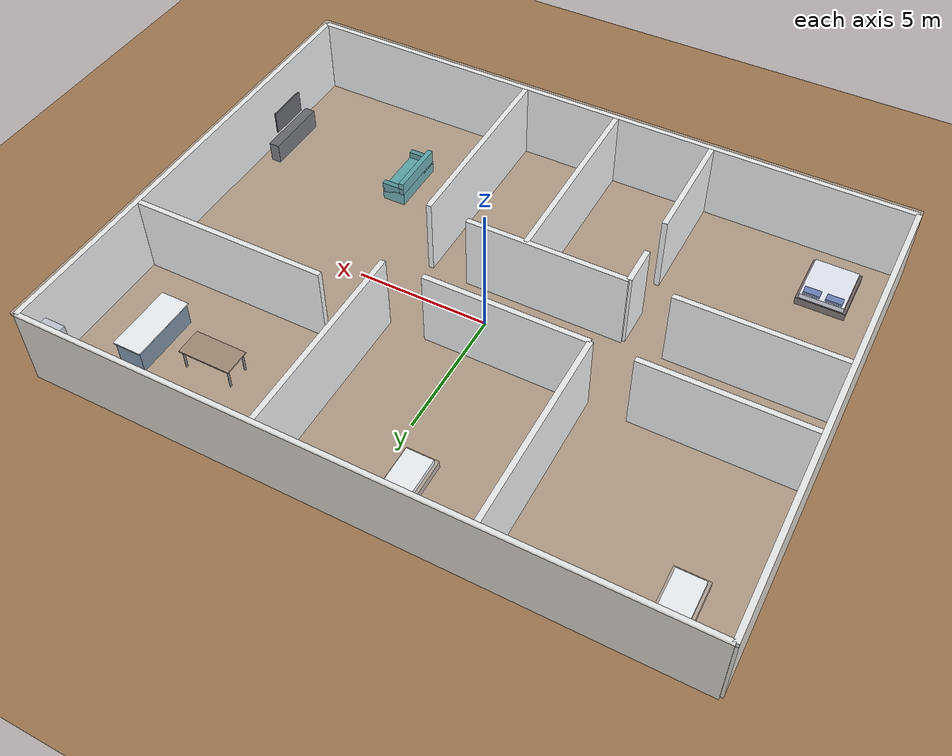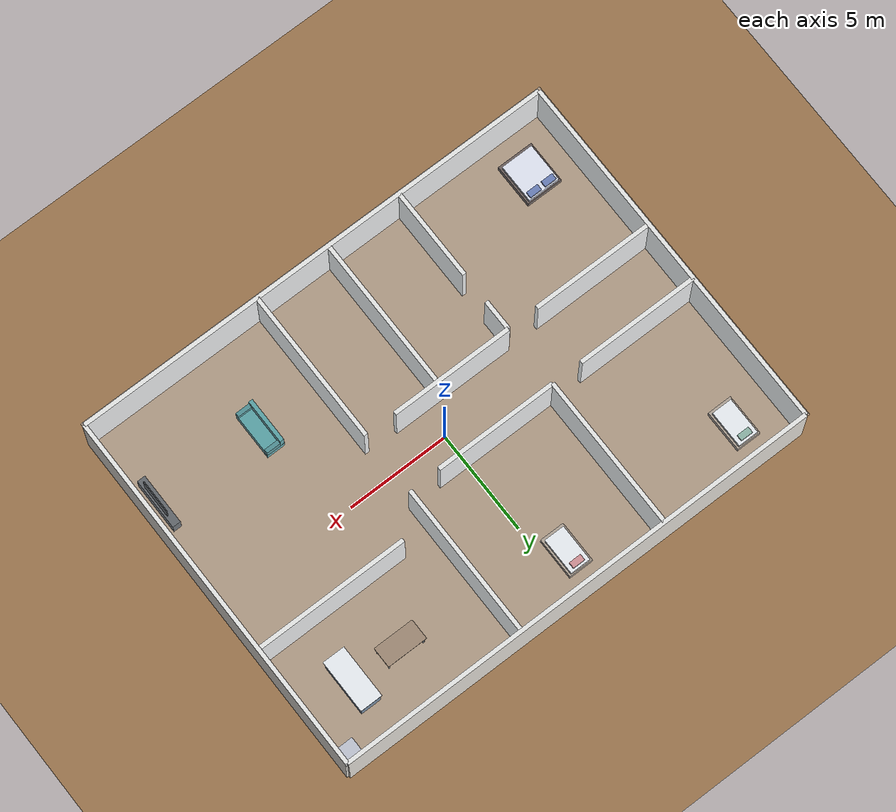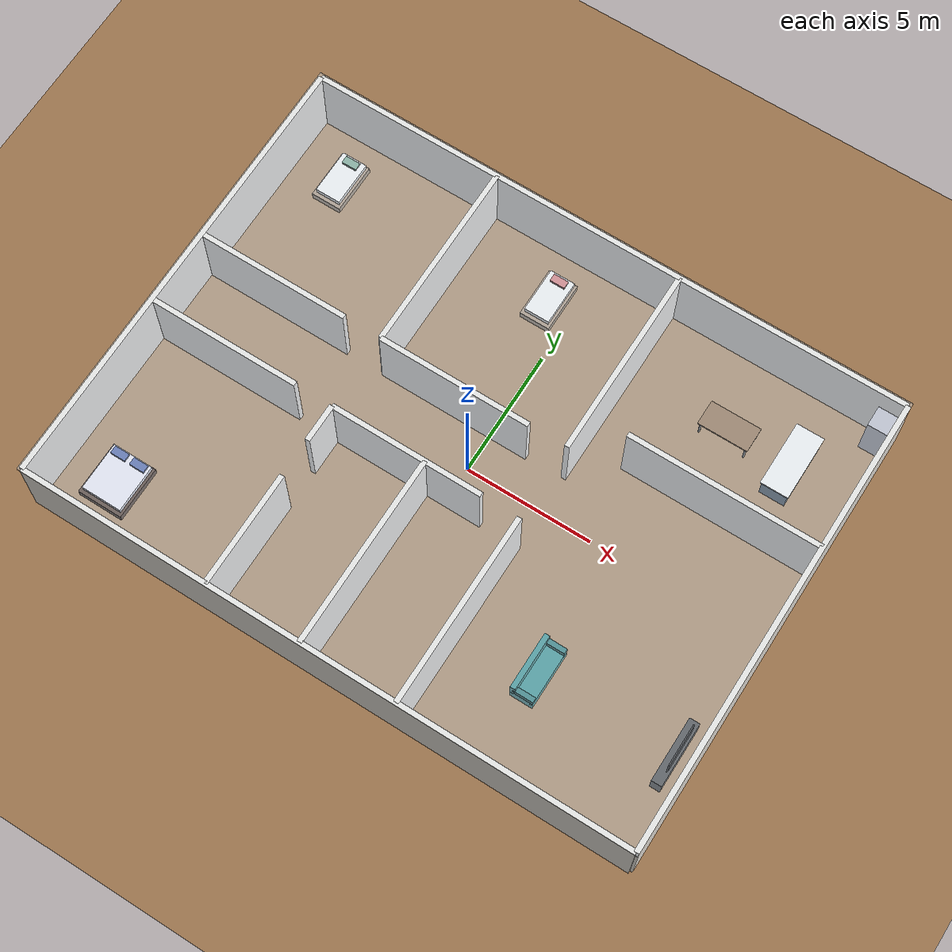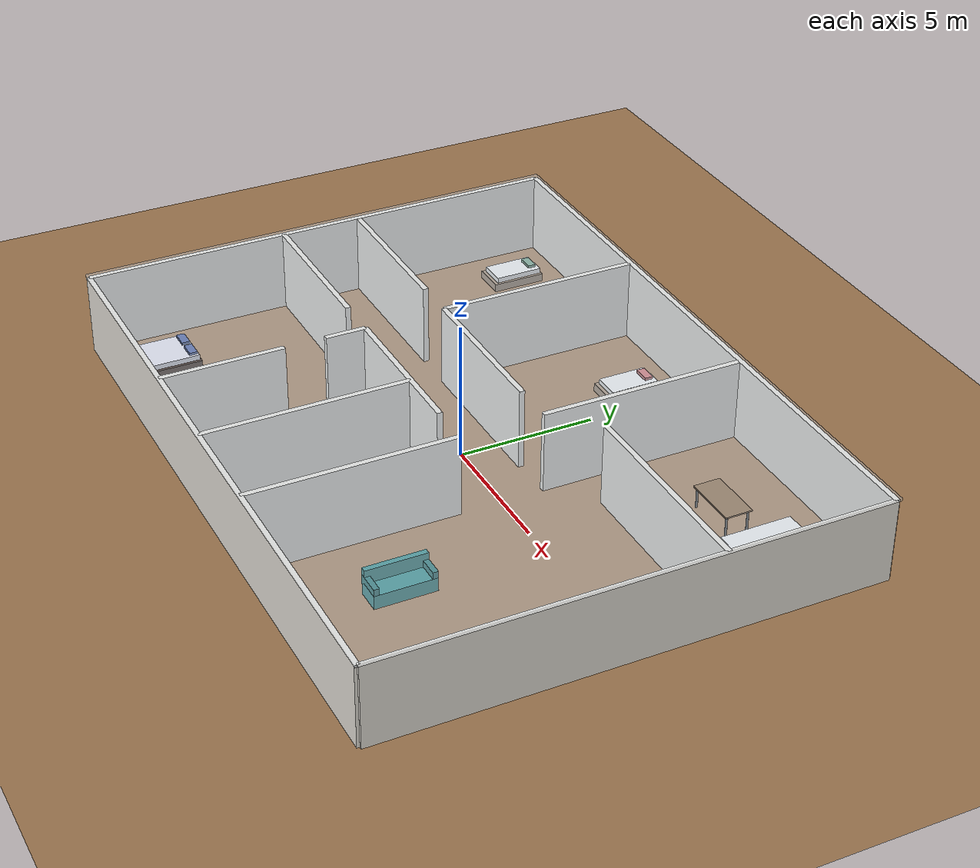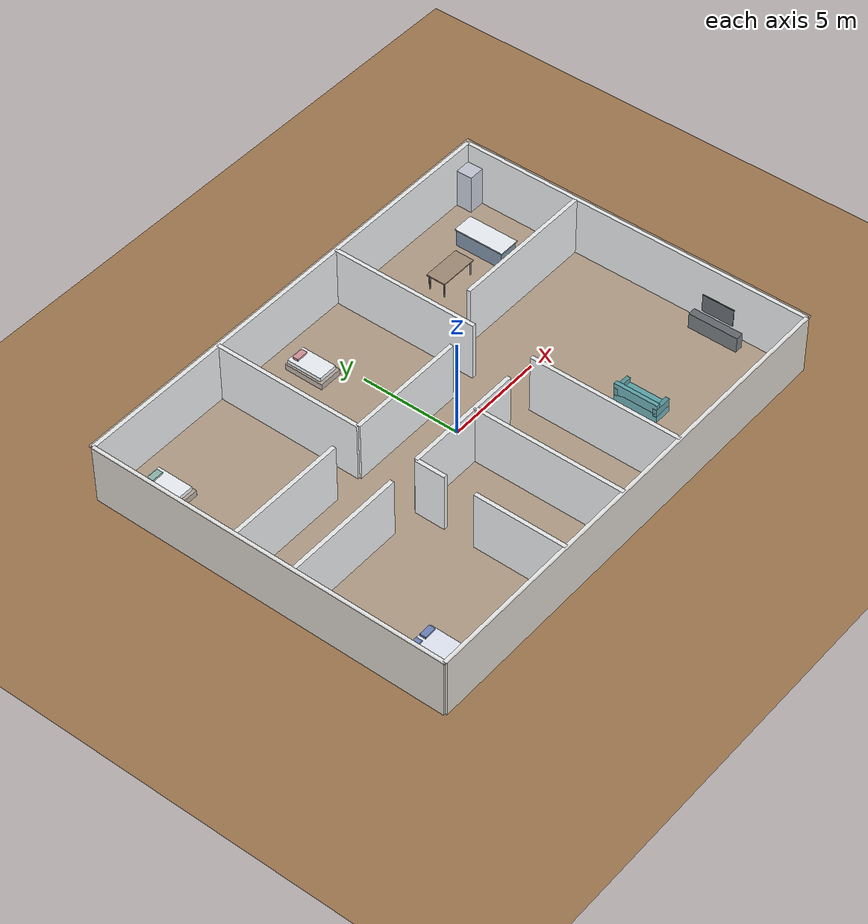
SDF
<sdf version="1.9">
 <world name="slam_world">
  <physics name="1ms" type="ignore">
   <max_step_size>0.001</max_step_size>
   <real_time_factor>1.0</real_time_factor>
  </physics>
  <plugin filename="gz-sim-physics-system" name="gz::sim::systems::Physics"/>
  <plugin filename="gz-sim-sensors-system" name="gz::sim::systems::Sensors">
   <render_engine>ogre2</render_engine>
  </plugin>
  <plugin filename="gz-sim-user-commands-system" name="gz::sim::systems::UserCommands"/>
  <plugin filename="gz-sim-scene-broadcaster-system" name="gz::sim::systems::SceneBroadcaster"/>
  <plugin filename="gz-sim-imu-system" name="gz::sim::systems::Imu"/>
  <plugin filename="gz-sim-navsat-system" name="gz::sim::systems::NavSat"/>
  <scene><ambient>1.0 1.0 1.0</ambient><background>0.6 0.8 0.9</background></scene>
  <light type="directional" name="sun">
   <pose>0 0 15 0 0 0</pose>
   <diffuse>0.95 0.95 0.95 1</diffuse>
   <specular>0.5 0.5 0.5 1</specular>
   <direction>-0.5 0.2 -0.8</direction>
  </light>
  <model name="ground_plane">
   <static>true</static>
   <link name="link">
    <collision name="collision">
     <geometry><plane><normal>0 0 1</normal><size>100 100</size></plane></geometry>
    </collision>
    <visual name="visual">
     <geometry><plane><normal>0 0 1</normal><size>100 100</size></plane></geometry>
     <material>
      <ambient>0.6 0.45 0.3 1</ambient>
      <diffuse>0.6 0.45 0.3 1</diffuse>
      <specular>0.1 0.1 0.1 1</specular>
     </material>
    </visual>
   </link>
  </model>
  <model name="apartment_structure">
   <static>true</static>
   <link name="wall_north">
    <pose>0 9 1.5 0 0 0</pose>
    <collision name="c"><geometry><box><size>24 0.2 3.0</size></box></geometry></collision>
    <visual name="v">
     <geometry><box><size>24 0.2 3.0</size></box></geometry>
     <material><ambient>0.93 0.91 0.88 1</ambient><diffuse>0.93 0.91 0.88 1</diffuse></material>
    </visual>
   </link>
   <link name="wall_south">
    <pose>0 -9 1.5 0 0 0</pose>
    <collision name="c"><geometry><box><size>24 0.2 3.0</size></box></geometry></collision>
    <visual name="v">
     <geometry><box><size>24 0.2 3.0</size></box></geometry>
     <material><ambient>0.93 0.91 0.88 1</ambient><diffuse>0.93 0.91 0.88 1</diffuse></material>
    </visual>
   </link>
   <link name="wall_east">
    <pose>12 0 1.5 0 0 0</pose>
    <collision name="c"><geometry><box><size>0.2 18 3.0</size></box></geometry></collision>
    <visual name="v">
     <geometry><box><size>0.2 18 3.0</size></box></geometry>
     <material><ambient>0.93 0.91 0.88 1</ambient><diffuse>0.93 0.91 0.88 1</diffuse></material>
    </visual>
   </link>
   <link name="wall_west">
    <pose>-12 0 1.5 0 0 0</pose>
    <collision name="c"><geometry><box><size>0.2 18 3.0</size></box></geometry></collision>
    <visual name="v">
     <geometry><box><size>0.2 18 3.0</size></box></geometry>
     <material><ambient>0.93 0.91 0.88 1</ambient><diffuse>0.93 0.91 0.88 1</diffuse></material>
    </visual>
   </link>
   <link name="hall_n_1">
    <pose>-9 1.5 1.5 0 0 0</pose>
    <collision name="c"><geometry><box><size>6 0.2 3.0</size></box></geometry></collision>
    <visual name="v">
     <geometry><box><size>6 0.2 3.0</size></box></geometry>
     <material><ambient>0.93 0.91 0.88 1</ambient><diffuse>0.93 0.91 0.88 1</diffuse></material>
    </visual>
   </link>
   <link name="hall_n_2">
    <pose>-1.5 1.5 1.5 0 0 0</pose>
    <collision name="c"><geometry><box><size>6 0.2 3.0</size></box></geometry></collision>
    <visual name="v">
     <geometry><box><size>6 0.2 3.0</size></box></geometry>
     <material><ambient>0.93 0.91 0.88 1</ambient><diffuse>0.93 0.91 0.88 1</diffuse></material>
    </visual>
   </link>
   <link name="hall_s_1">
    <pose>-9 -1.5 1.5 0 0 0</pose>
    <collision name="c"><geometry><box><size>6 0.2 3.0</size></box></geometry></collision>
    <visual name="v">
     <geometry><box><size>6 0.2 3.0</size></box></geometry>
     <material><ambient>0.93 0.91 0.88 1</ambient><diffuse>0.93 0.91 0.88 1</diffuse></material>
    </visual>
   </link>
   <link name="hall_s_2">
    <pose>-1.5 -1.5 1.5 0 0 0</pose>
    <collision name="c"><geometry><box><size>6 0.2 3.0</size></box></geometry></collision>
    <visual name="v">
     <geometry><box><size>6 0.2 3.0</size></box></geometry>
     <material><ambient>0.93 0.91 0.88 1</ambient><diffuse>0.93 0.91 0.88 1</diffuse></material>
    </visual>
   </link>
   <link name="div_bed1_2">
    <pose>-4.5 5.25 1.5 0 0 0</pose>
    <collision name="c"><geometry><box><size>0.2 7.5 3.0</size></box></geometry></collision>
    <visual name="v">
     <geometry><box><size>0.2 7.5 3.0</size></box></geometry>
     <material><ambient>0.93 0.91 0.88 1</ambient><diffuse>0.93 0.91 0.88 1</diffuse></material>
    </visual>
   </link>
   <link name="div_bed2_kit">
    <pose>3 5.25 1.5 0 0 0</pose>
    <collision name="c"><geometry><box><size>0.2 7.5 3.0</size></box></geometry></collision>
    <visual name="v">
     <geometry><box><size>0.2 7.5 3.0</size></box></geometry>
     <material><ambient>0.93 0.91 0.88 1</ambient><diffuse>0.93 0.91 0.88 1</diffuse></material>
    </visual>
   </link>
   <link name="kit_south">
    <pose>8.25 3 1.5 0 0 0</pose>
    <collision name="c"><geometry><box><size>7.5 0.2 3.0</size></box></geometry></collision>
    <visual name="v">
     <geometry><box><size>7.5 0.2 3.0</size></box></geometry>
     <material><ambient>0.93 0.91 0.88 1</ambient><diffuse>0.93 0.91 0.88 1</diffuse></material>
    </visual>
   </link>
   <link name="master_e_1">
    <pose>-4.5 -2.25 1.5 0 0 0</pose>
    <collision name="c"><geometry><box><size>0.2 1.5 3.0</size></box></geometry></collision>
    <visual name="v">
     <geometry><box><size>0.2 1.5 3.0</size></box></geometry>
     <material><ambient>0.93 0.91 0.88 1</ambient><diffuse>0.93 0.91 0.88 1</diffuse></material>
    </visual>
   </link>
   <link name="master_e_2">
    <pose>-4.5 -6.75 1.5 0 0 0</pose>
    <collision name="c"><geometry><box><size>0.2 4.5 3.0</size></box></geometry></collision>
    <visual name="v">
     <geometry><box><size>0.2 4.5 3.0</size></box></geometry>
     <material><ambient>0.93 0.91 0.88 1</ambient><diffuse>0.93 0.91 0.88 1</diffuse></material>
    </visual>
   </link>
   <link name="div_bath_liv">
    <pose>3 -5.25 1.5 0 0 0</pose>
    <collision name="c"><geometry><box><size>0.2 7.5 3.0</size></box></geometry></collision>
    <visual name="v">
     <geometry><box><size>0.2 7.5 3.0</size></box></geometry>
     <material><ambient>0.93 0.91 0.88 1</ambient><diffuse>0.93 0.91 0.88 1</diffuse></material>
    </visual>
   </link>
   <link name="div_ensuite_com">
    <pose>-0.75 -5.25 1.5 0 0 0</pose>
    <collision name="c"><geometry><box><size>0.2 7.5 3.0</size></box></geometry></collision>
    <visual name="v">
     <geometry><box><size>0.2 7.5 3.0</size></box></geometry>
     <material><ambient>0.93 0.91 0.88 1</ambient><diffuse>0.93 0.91 0.88 1</diffuse></material>
    </visual>
   </link>
   <link name="glass_ceiling">
    <pose>0 0 3.05 0 0 0</pose>
    <collision name="c"><geometry><box><size>24.2 18.2 0.1</size></box></geometry></collision>
    <visual name="v">
     <geometry><box><size>24.2 18.2 0.1</size></box></geometry>
     <material>
      <ambient>0.85 0.9 0.95 0.35</ambient>
      <diffuse>0.85 0.9 0.95 0.35</diffuse>
      <specular>1.0 1.0 1.0 0.3</specular>
      <pbr><metal><roughness>0.05</roughness><metalness>0.1</metalness></metal></pbr>
     </material>
    </visual>
   </link>
  </model>
  <model name="dining_table">
   <static>true</static>
   <pose>7 6 0 0 0 0</pose>
   <link name="top">
    <pose>0 0 0.8 0 0 0</pose>
    <collision name="c"><geometry><box><size>2 1 0.05</size></box></geometry></collision>
    <visual name="v">
     <geometry><box><size>2 1 0.05</size></box></geometry>
     <material><ambient>0.5 0.35 0.2 1</ambient><diffuse>0.5 0.35 0.2 1</diffuse></material>
    </visual>
   </link>
   <link name="leg1">
    <pose>0.9 0.4 0.4 0 0 0</pose>
    <visual name="v">
     <geometry><cylinder><radius>0.04</radius><length>0.8</length></cylinder></geometry>
     <material><ambient>0.2 0.2 0.2 1</ambient><diffuse>0.2 0.2 0.2 1</diffuse></material>
    </visual>
   </link>
   <link name="leg2">
    <pose>-0.9 0.4 0.4 0 0 0</pose>
    <visual name="v">
     <geometry><cylinder><radius>0.04</radius><length>0.8</length></cylinder></geometry>
     <material><ambient>0.2 0.2 0.2 1</ambient><diffuse>0.2 0.2 0.2 1</diffuse></material>
    </visual>
   </link>
   <link name="leg3">
    <pose>0.9 -0.4 0.4 0 0 0</pose>
    <visual name="v">
     <geometry><cylinder><radius>0.04</radius><length>0.8</length></cylinder></geometry>
     <material><ambient>0.2 0.2 0.2 1</ambient><diffuse>0.2 0.2 0.2 1</diffuse></material>
    </visual>
   </link>
   <link name="leg4">
    <pose>-0.9 -0.4 0.4 0 0 0</pose>
    <visual name="v">
     <geometry><cylinder><radius>0.04</radius><length>0.8</length></cylinder></geometry>
     <material><ambient>0.2 0.2 0.2 1</ambient><diffuse>0.2 0.2 0.2 1</diffuse></material>
    </visual>
   </link>
  </model>
  <model name="sofa">
   <static>true</static>
   <pose>6 -5 0 0 0 1.5708</pose>
   <link name="seat">
    <pose>0 0 0.25 0 0 0</pose>
    <collision name="c"><geometry><box><size>2.2 0.9 0.5</size></box></geometry></collision>
    <visual name="v">
     <geometry><box><size>2.2 0.9 0.5</size></box></geometry>
     <material><ambient>0.1 0.5 0.5 1</ambient><diffuse>0.1 0.5 0.5 1</diffuse></material>
    </visual>
   </link>
   <link name="backrest">
    <pose>0 0.35 0.7 0 0 0</pose>
    <collision name="c"><geometry><box><size>2.2 0.2 0.6</size></box></geometry></collision>
    <visual name="v">
     <geometry><box><size>2.2 0.2 0.6</size></box></geometry>
     <material><ambient>0.1 0.5 0.5 1</ambient><diffuse>0.1 0.5 0.5 1</diffuse></material>
    </visual>
   </link>
   <link name="arm_left">
    <pose>-1.0 0 0.55 0 0 0</pose>
    <visual name="v">
     <geometry><box><size>0.2 0.9 0.4</size></box></geometry>
     <material><ambient>0.05 0.4 0.4 1</ambient><diffuse>0.05 0.4 0.4 1</diffuse></material>
    </visual>
   </link>
   <link name="arm_right">
    <pose>1.0 0 0.55 0 0 0</pose>
    <visual name="v">
     <geometry><box><size>0.2 0.9 0.4</size></box></geometry>
     <material><ambient>0.05 0.4 0.4 1</ambient><diffuse>0.05 0.4 0.4 1</diffuse></material>
    </visual>
   </link>
  </model>
  <model name="master_bed">
   <static>true</static>
   <pose>-10 -7 0 0 0 0</pose>
   <link name="frame">
    <pose>0 0 0.15 0 0 0</pose>
    <collision name="c"><geometry><box><size>1.8 2.1 0.3</size></box></geometry></collision>
    <visual name="v">
     <geometry><box><size>1.8 2.1 0.3</size></box></geometry>
     <material><ambient>0.2 0.1 0.05 1</ambient><diffuse>0.2 0.1 0.05 1</diffuse></material>
    </visual>
   </link>
   <link name="mattress">
    <pose>0 0.05 0.4 0 0 0</pose>
    <collision name="c"><geometry><box><size>1.6 1.9 0.2</size></box></geometry></collision>
    <visual name="v">
     <geometry><box><size>1.6 1.9 0.2</size></box></geometry>
     <material><ambient>0.9 0.9 0.95 1</ambient><diffuse>0.9 0.9 0.95 1</diffuse></material>
    </visual>
   </link>
   <link name="pillow1">
    <pose>-0.4 0.8 0.55 0 0 0</pose>
    <visual name="v">
     <geometry><box><size>0.6 0.3 0.1</size></box></geometry>
     <material><ambient>0.2 0.3 0.6 1</ambient><diffuse>0.2 0.3 0.6 1</diffuse></material>
    </visual>
   </link>
   <link name="pillow2">
    <pose>0.4 0.8 0.55 0 0 0</pose>
    <visual name="v">
     <geometry><box><size>0.6 0.3 0.1</size></box></geometry>
     <material><ambient>0.2 0.3 0.6 1</ambient><diffuse>0.2 0.3 0.6 1</diffuse></material>
    </visual>
   </link>
  </model>
  <model name="guest_bed_1">
   <static>true</static>
   <pose>-10 7 0 0 0 0</pose>
   <link name="frame">
    <pose>0 0 0.15 0 0 0</pose>
    <visual name="v">
     <geometry><box><size>1.2 2.0 0.3</size></box></geometry>
     <material><ambient>0.6 0.5 0.4 1</ambient><diffuse>0.6 0.5 0.4 1</diffuse></material>
    </visual>
    <collision name="c"><geometry><box><size>1.2 2.0 0.3</size></box></geometry></collision>
   </link>
   <link name="mattress">
    <pose>0 0.05 0.4 0 0 0</pose>
    <visual name="v">
     <geometry><box><size>1.0 1.8 0.2</size></box></geometry>
     <material><ambient>0.95 0.95 0.95 1</ambient><diffuse>0.95 0.95 0.95 1</diffuse></material>
    </visual>
   </link>
   <link name="pillow">
    <pose>0 0.7 0.55 0 0 0</pose>
    <visual name="v">
     <geometry><box><size>0.6 0.3 0.1</size></box></geometry>
     <material><ambient>0.4 0.6 0.5 1</ambient><diffuse>0.4 0.6 0.5 1</diffuse></material>
    </visual>
   </link>
  </model>
  <model name="guest_bed_2">
   <static>true</static>
   <pose>-1 7 0 0 0 0</pose>
   <link name="frame">
    <pose>0 0 0.15 0 0 0</pose>
    <visual name="v">
     <geometry><box><size>1.2 2.0 0.3</size></box></geometry>
     <material><ambient>0.6 0.5 0.4 1</ambient><diffuse>0.6 0.5 0.4 1</diffuse></material>
    </visual>
    <collision name="c"><geometry><box><size>1.2 2.0 0.3</size></box></geometry></collision>
   </link>
   <link name="mattress">
    <pose>0 0.05 0.4 0 0 0</pose>
    <visual name="v">
     <geometry><box><size>1.0 1.8 0.2</size></box></geometry>
     <material><ambient>0.95 0.95 0.95 1</ambient><diffuse>0.95 0.95 0.95 1</diffuse></material>
    </visual>
   </link>
   <link name="pillow">
    <pose>0 0.7 0.55 0 0 0</pose>
    <visual name="v">
     <geometry><box><size>0.6 0.3 0.1</size></box></geometry>
     <material><ambient>0.8 0.4 0.4 1</ambient><diffuse>0.8 0.4 0.4 1</diffuse></material>
    </visual>
   </link>
  </model>
  <model name="tv_unit">
   <static>true</static>
   <pose>11.5 -5 0 0 0 0</pose>
   <link name="console">
    <pose>-0.2 0 0.4 0 0 0</pose>
    <visual name="v">
     <geometry><box><size>0.4 2.5 0.8</size></box></geometry>
     <material><ambient>0.15 0.15 0.15 1</ambient><diffuse>0.15 0.15 0.15 1</diffuse></material>
    </visual>
    <collision name="c"><geometry><box><size>0.4 2.5 0.8</size></box></geometry></collision>
   </link>
   <link name="tv_screen">
    <pose>-0.1 0 1.5 0 0 0</pose>
    <visual name="v">
     <geometry><box><size>0.05 1.6 0.9</size></box></geometry>
     <material>
      <ambient>0.05 0.05 0.05 1</ambient>
      <diffuse>0.05 0.05 0.05 1</diffuse>
      <specular>0.8 0.8 0.8 1</specular>
     </material>
    </visual>
    <collision name="c"><geometry><box><size>0.05 1.6 0.9</size></box></geometry></collision>
   </link>
  </model>
  <model name="kitchen_setup">
   <static>true</static>
   <pose>11 6 0 0 0 0</pose>
   <link name="island_base">
    <pose>-1.5 0 0.45 0 0 0</pose>
    <visual name="v">
     <geometry><box><size>1.0 2.5 0.9</size></box></geometry>
     <material><ambient>0.2 0.3 0.4 1</ambient><diffuse>0.2 0.3 0.4 1</diffuse></material>
    </visual>
    <collision name="c"><geometry><box><size>1.0 2.5 0.9</size></box></geometry></collision>
   </link>
   <link name="island_countertop">
    <pose>-1.5 0 0.925 0 0 0</pose>
    <visual name="v">
     <geometry><box><size>1.1 2.6 0.05</size></box></geometry>
     <material>
      <ambient>0.95 0.95 0.95 1</ambient>
      <diffuse>0.95 0.95 0.95 1</diffuse>
      <specular>0.5 0.5 0.5 1</specular>
     </material>
    </visual>
    <collision name="c"><geometry><box><size>1.1 2.6 0.05</size></box></geometry></collision>
   </link>
   <link name="fridge">
    <pose>0.5 2.5 1.0 0 0 0</pose>
    <visual name="v">
     <geometry><box><size>0.8 0.8 2.0</size></box></geometry>
     <material>
      <ambient>0.7 0.7 0.75 1</ambient>
      <diffuse>0.7 0.7 0.75 1</diffuse>
      <specular>0.8 0.8 0.8 1</specular>
     </material>
    </visual>
    <collision name="c"><geometry><box><size>0.8 0.8 2.0</size></box></geometry></collision>
   </link>
  </model>
 </world>
</sdf>
